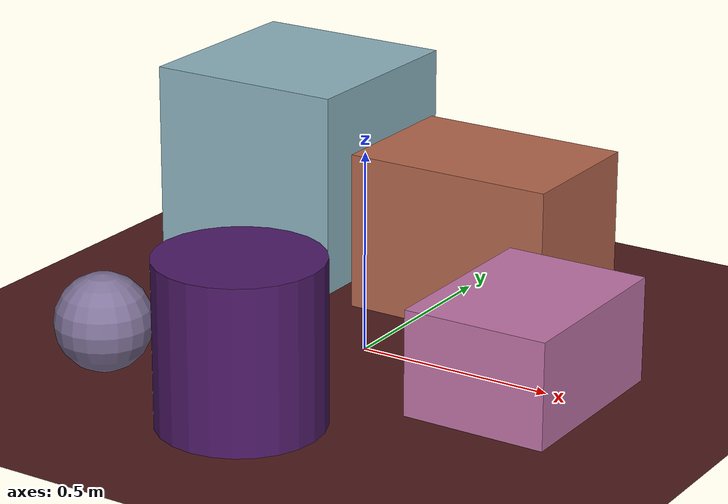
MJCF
<mujoco>
   <asset>
<texture type="skybox" builtin="gradient" rgb1="0.5 0.7 0.4" rgb2="0.9 0.2 0.5" width="256" height="256"/>
<texture name="flat_0" builtin="flat" rgb1="0.3 0.1 0.4" rgb2="0.3 0.1 0.4"  width="200" height="200"/>
<texture name="checker_1" builtin="checker" rgb1="0.7 0.2 1.0" rgb2="0.3 0.7 0.2" width="200" height="200"/>
<texture name="flat_2" builtin="flat" rgb1="0.7 0.4 0.3" rgb2="0.7 0.4 0.3"  width="200" height="200"/>
<texture name="gradient_3" builtin="gradient" rgb1="0.7 0.5 0.7" rgb2="0.8 0.4 0.6" width="200" height="200"/>
<texture name="checker_4" builtin="checker" rgb1="1.0 1.0 0.5" rgb2="0.1 0.4 1.0" width="200" height="200"/><material name="flat_0_mat" reflectance="0" texture="flat_0" texuniform="true"/>
<material name="checker_1_mat" reflectance="0" texrepeat="8 8" texture="checker_1" texuniform="false" />
<material name="flat_2_mat" reflectance="0" texture="flat_2" texuniform="true"/>
<material name="gradient_3_mat" reflectance="0" texture="gradient_3" texuniform="true"/>
<material name="checker_4_mat" reflectance="0" texrepeat="10 10" texture="checker_4" texuniform="false" />
   </asset>

   <worldbody>
      <light diffuse=".9 .9 .9" pos="0 0 3" dir="0 0 -1"/>
     <geom type="plane" size="1 1 0.1" rgba="0.3 0.1 0.1 1"/>
<geom type="cylinder" pos="-0.0 -0.52 0.2" size="0.2 0.2 0.2" material="flat_0_mat" />
<geom type="sphere" pos="-0.45 -0.44 0.12" size="0.12 0.12 0.12" material="checker_1_mat" />
<geom type="box" pos="0.09 0.41 0.2" size="0.27 0.19 0.2" material="flat_2_mat" />
<geom type="box" pos="0.47 -0.05 0.13" size="0.18 0.24 0.13" material="gradient_3_mat" />
<geom type="box" pos="-0.53 0.51 0.26" size="0.26 0.26 0.26" material="checker_4_mat" /><camera euler="60 0 180" fovy="60" name="camera_a" pos="0 -1.5 1"></camera>   </worldbody>
</mujoco>
